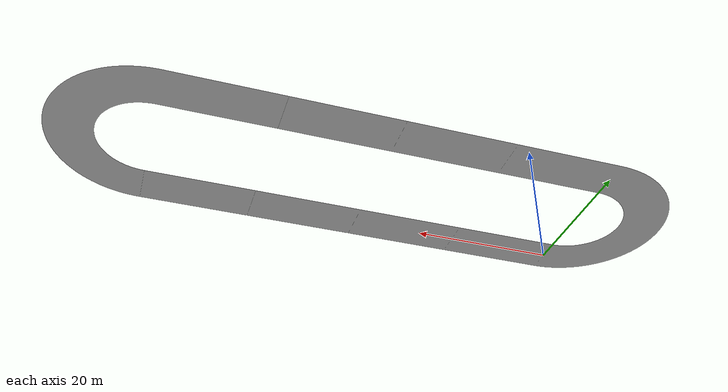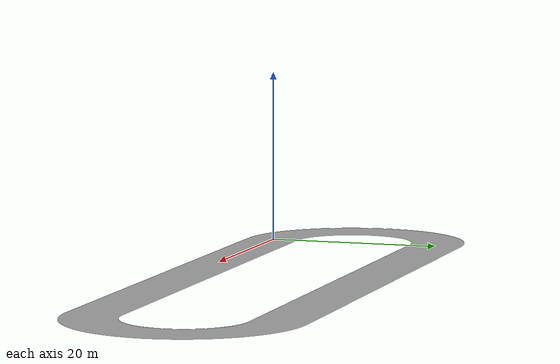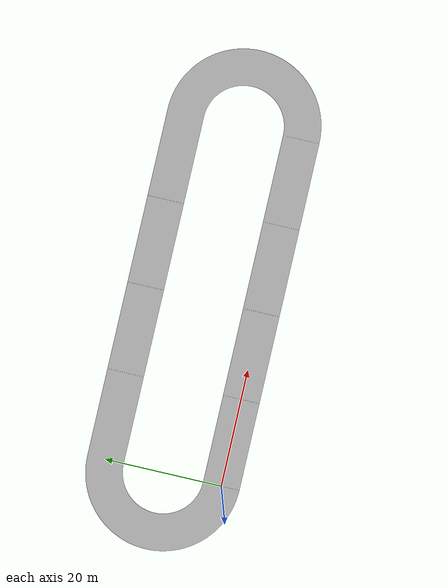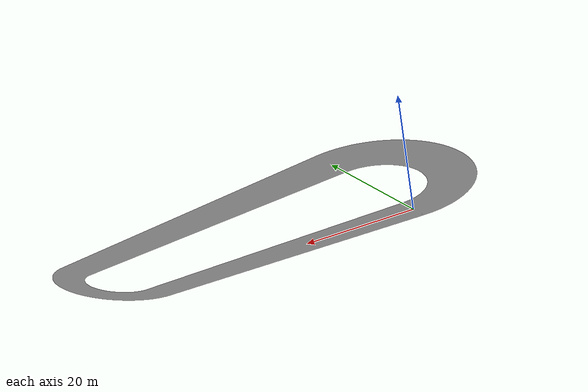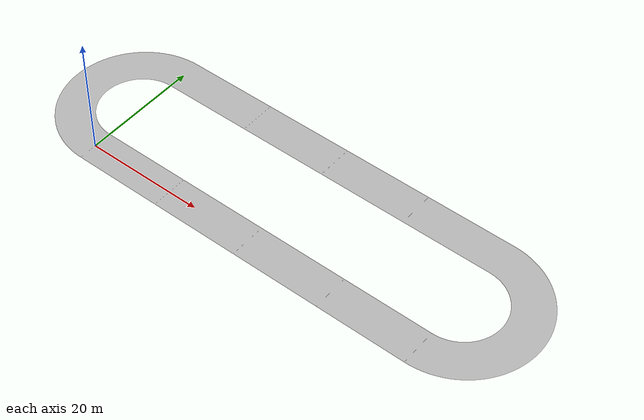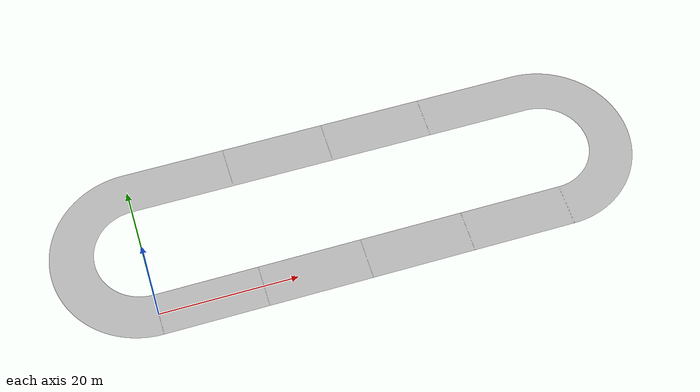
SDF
<?xml version="1.0" ?>
<sdf version="1.6">
  <model name="loop_road">
    <pose>0 0 0 0 0 0</pose>
    <static>true</static>
    <link name="link">
      <collision name="collision">
        <geometry>
          <mesh>
            <uri>model://loop_road/meshes/loop_road.obj</uri>
            <scale>1 1 1</scale>
          </mesh>
        </geometry>
      </collision>

      <visual name="visual">
        <geometry>
          <mesh>
            <uri>model://loop_road/meshes/loop_road.obj</uri>
            <scale>1 1 1</scale>
          </mesh>
        </geometry>
      </visual>
    </link>
  </model>
</sdf>
